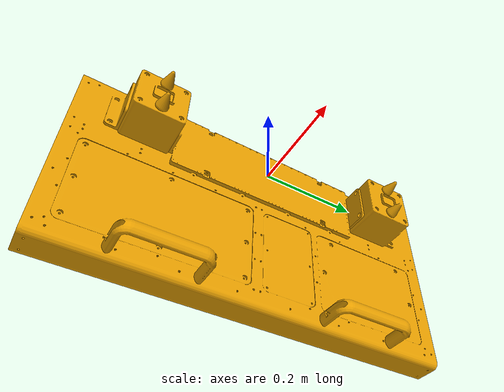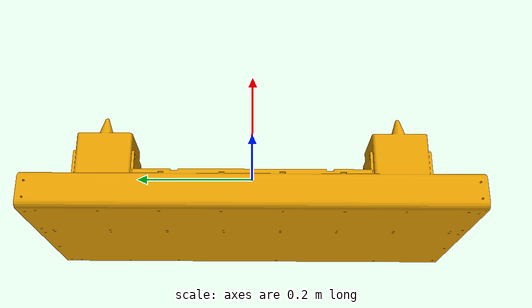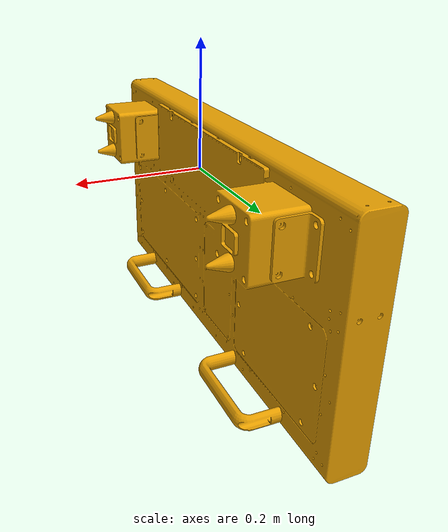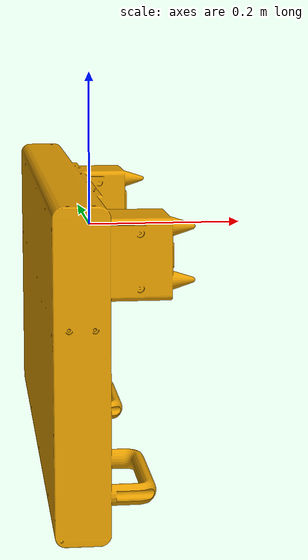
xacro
<?xml version="1.0"?>

<!-- Copyright (c) 2017, United States Government, as represented by the     -->
<!-- Administrator of the National Aeronautics and Space Administration.     -->
<!-- All rights reserved.                                                    -->
<!-- The Astrobee platform is licensed under the Apache License, Version 2.0 -->
<!-- (the "License"); you may not use this file except in compliance with    -->
<!-- the License. You may obtain a copy of the License at                    -->
<!--     http://www.apache.org/licenses/LICENSE-2.0                          -->
<!-- Unless required by applicable law or agreed to in writing, software     -->
<!-- distributed under the License is distributed on an "AS IS" BASIS,       -->
<!-- WITHOUT WARRANTIES OR CONDITIONS OF ANY KIND, either express or         -->
<!-- implied. See the License for the specific language governing            -->
<!-- permissions and limitations under the License.                          -->

<robot xmlns:xacro="http://www.ros.org/wiki/xacro">
  <link name="body">
    <inertial>
      <mass value="20"/>
      <origin xyz="0 0 0"/>
      <inertia ixx="1" ixy="0" ixz="0" iyy="1" iyz="0" izz="1"/>
    </inertial>
    <visual name="body_visual">
      <origin xyz="0 0 0" rpy="0 0 0" />
      <geometry>
        <mesh filename="package://astrobee_gazebo/media/meshes/dock.dae"/>
      </geometry>
    </visual>
    <collision name="body_collision">
      <origin xyz="0 0 0" rpy="0 0 0" />
      <geometry>
        <mesh filename="package://astrobee_gazebo/media/meshes/dock.dae"/>
      </geometry>
      <gazebo>
        <surface>
          <friction>
            <ode>
              <mu>0.99</mu>
              <mu2>0.99</mu2>
            </ode>
          </friction>
        </surface>
        <contact>
          <ode>
            <max_vel>0.0</max_vel>
            <min_depth>0.001</min_depth>
          </ode>
        </contact>
      </gazebo>
    </collision>
  </link>
  <gazebo>
    <static>true</static>
    <plugin name="dock_ros" filename="libgazebo_model_plugin_dock.so" />
  </gazebo>
</robot>
